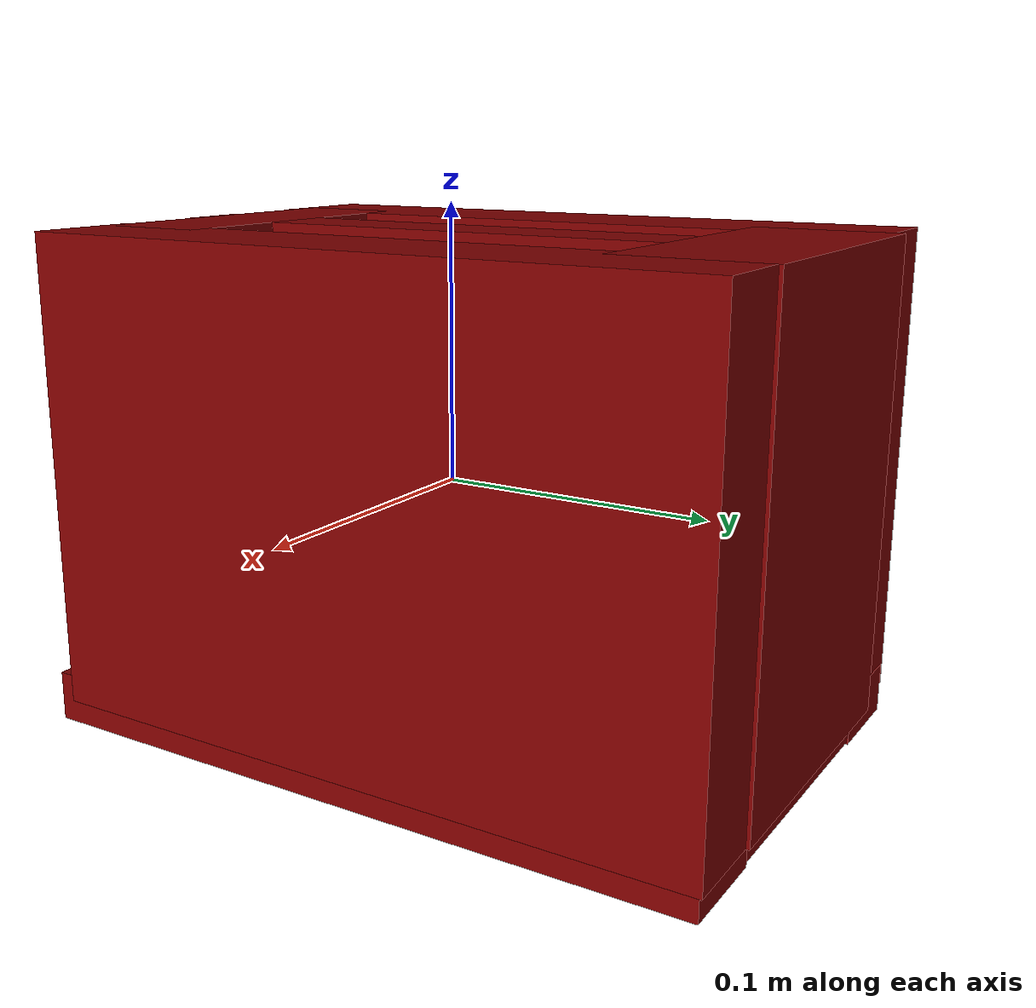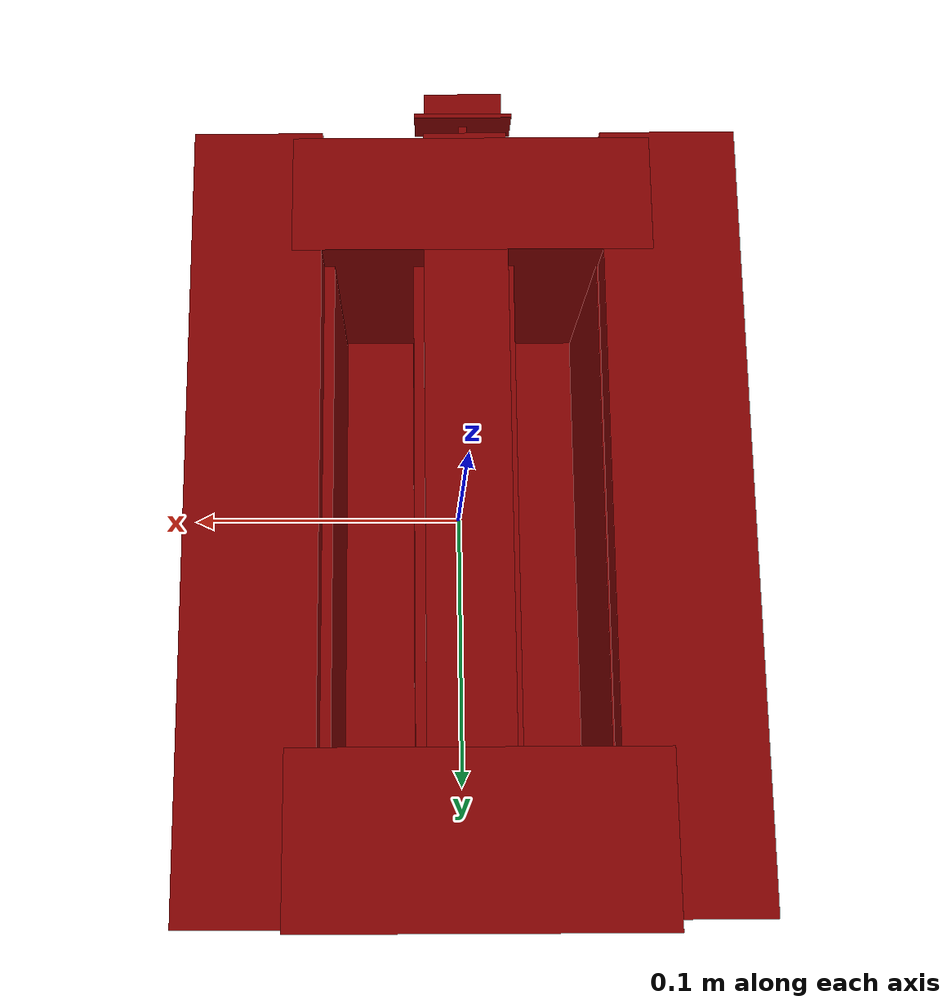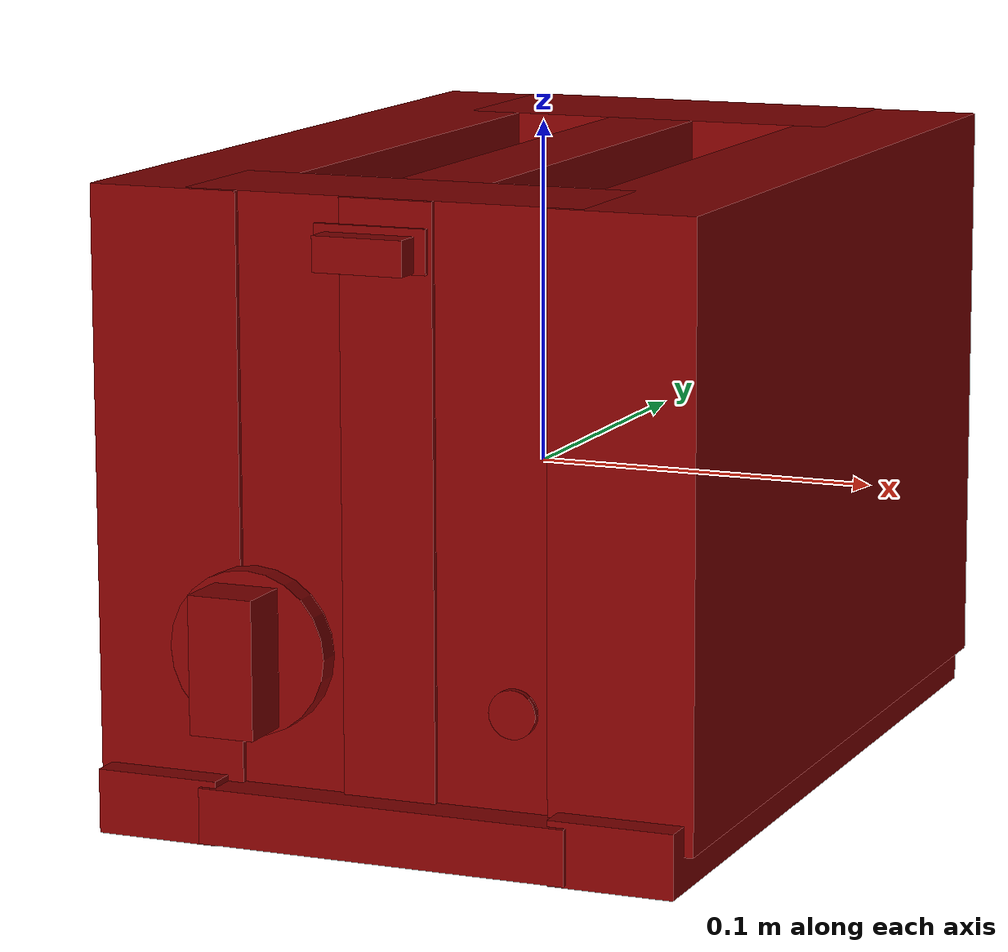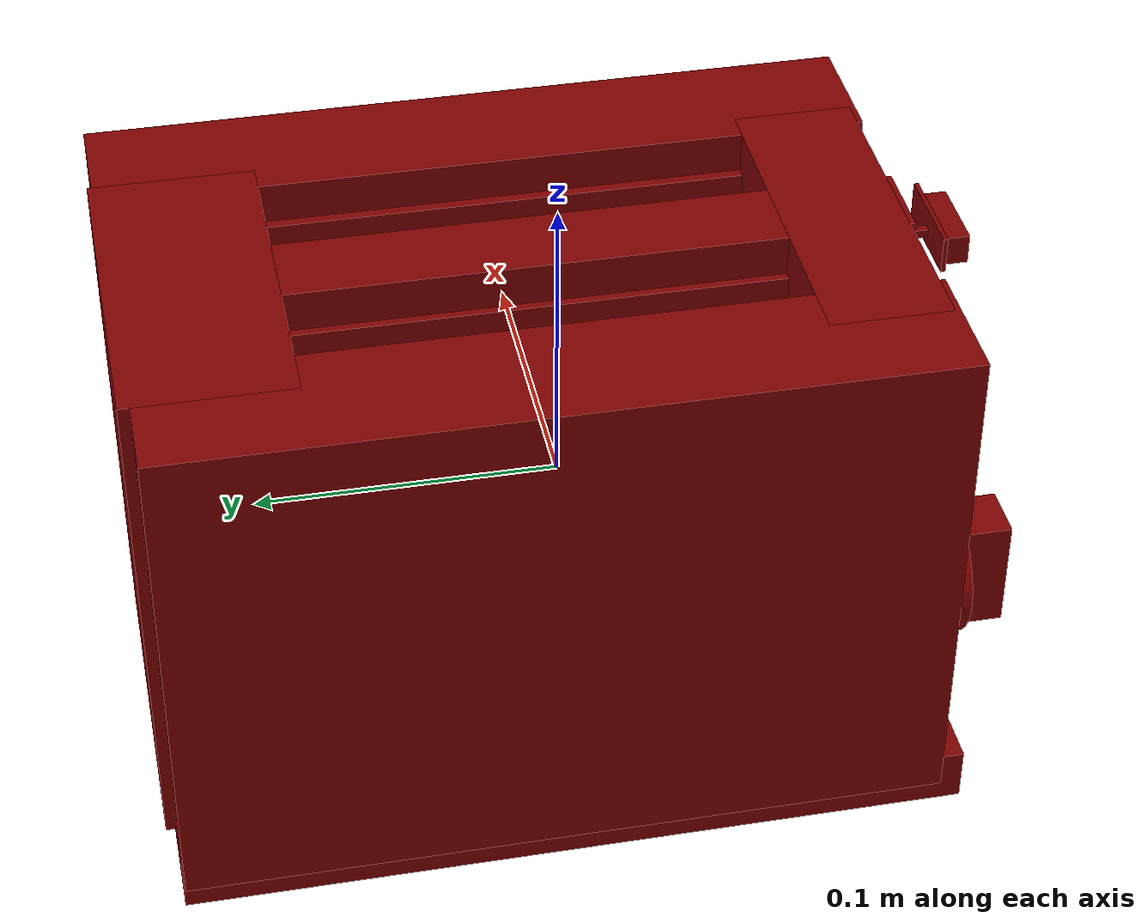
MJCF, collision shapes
<?xml version='1.0' encoding='UTF-8'?>
<mujoco model="model">
  <option timestep="0.002" gravity="0.0 0.0 -9.81"/>
  <compiler angle="radian"/>
  <asset>
    <mesh file="visuals/button_cancel.obj" name="button_cancel_vis"/>
    <mesh file="visuals/knob_doneness.obj" name="knob_doneness_vis"/>
    <mesh file="visuals/lever.obj" name="lever_vis"/>
    <mesh file="visuals/Body001.obj" name="Body001_vis"/>
    <mesh file="visuals/Body002.obj" name="Body002_vis"/>
    <texture file="visuals/T_BC001.png" name="Body001_material" type="2d"/>
    <material name="Body001_material" rgba="1 1 1 1.0" texture="Body001_material" shininess="0.5" specular="0.33333333333333337"/>
    <texture file="visuals/T_BC001.png" name="button_cancel_material" type="2d"/>
    <material name="button_cancel_material" rgba="1 1 1 1.0" texture="button_cancel_material" shininess="0.5" specular="0.33333333333333337"/>
    <texture file="visuals/T_BC001.png" name="knob_doneness_material" type="2d"/>
    <material name="knob_doneness_material" rgba="1 1 1 1.0" texture="knob_doneness_material" shininess="0.5" specular="0.33333333333333337"/>
    <texture file="visuals/T_BC001.png" name="lever_material" type="2d"/>
    <material name="lever_material" rgba="1 1 1 1.0" texture="lever_material" shininess="0.5" specular="0.33333333333333337"/>
    <texture file="visuals/T_BC001.png" name="Body002_material" type="2d"/>
    <material name="Body002_material" rgba="1 1 1 1.0" texture="Body002_material" shininess="0.5" specular="8"/>
  </asset>
  <default>
    <default class="visual">
      <geom conaffinity="0" contype="0" group="1" type="mesh"/>
    </default>
    <default class="collision_1">
      <geom group="0" rgba="0.5 0 0 0.5" solref="0.004 1" solimp="0.998 0.998 0.001"/>
    </default>
    <default class="collision_2">
      <geom group="0" rgba="0.5 0 0 0.5" solref="0.004 1" solimp="0.998 0.998 0.001"/>
    </default>
    <default class="collision_3">
      <geom group="0" rgba="0.5 0 0 0.5" solref="0.004 1" solimp="0.998 0.998 0.001"/>
    </default>
    <default class="collision_4">
      <geom group="0" rgba="0.5 0 0 0.5" solref="0.004 1" solimp="0.998 0.998 0.001"/>
    </default>
    <default class="collision_5">
      <geom group="0" rgba="0.5 0 0 0.5" solref="0.004 1" solimp="0.998 0.998 0.001"/>
    </default>
    <default class="spawn">
      <geom group="0" rgba="1 1 1 0.5" contype="0" conaffinity="0"/>
      <site group="0" rgba="1 1 1 0.5"/>
    </default>
    <default class="region">
      <geom group="1" conaffinity="0" contype="0" rgba="0 1 0 0" mass="0"/>
    </default>
  </default>
  <worldbody>
    <body>
      <body name="object">
        <geom mesh="Body001_vis" type="mesh" solimp="0.998 0.998 0.001" solref="0.001 1" friction="0.95 0.3 0.1" class="visual" material="Body001_material"/>
        <geom type="box" pos="-0.06657945 0.01320358 0.00512394" size="0.022000417113304138 0.12420133501291275 0.0859735980629921" quat="1.0 0.0 0.0 0.0" class="collision_1"/>
        <geom type="box" pos="-0.06728268 0.00935089 -0.08147969" size="0.018060563132166862 0.12854349613189697 0.009187182411551476" quat="1.0 0.0 0.0 0.0" class="collision_1"/>
        <geom type="box" pos="0.06765034 0.00935089 -0.08147969" size="0.018060563132166862 0.12854349613189697 0.009187182411551476" quat="1.0 0.0 0.0 0.0" class="collision_1"/>
        <geom type="box" pos="0.00063173 0.00837137 -0.08201685" size="0.05432597175240517 0.12903183698654175 0.00795928854495287" quat="1.0 0.0 0.0 0.0" class="collision_1"/>
        <geom type="box" pos="0.06731218 0.01438977 0.00512394" size="0.020953932777047157 0.125385582447052 0.08597490936517715" quat="1.0 0.0 0.0 0.0" class="collision_1"/>
        <geom type="box" pos="-0.00019178 0.01320358 0.00512394" size="0.013569749891757965 0.12419915199279785 0.08597507327795029" quat="1.0 0.0 0.0 0.0" class="collision_1"/>
        <geom type="box" pos="-0.00228699 0.11442229 0.00512394" size="0.05831209197640419 0.026644278317689896 0.08597523719072342" quat="1.0 0.0 0.0 0.0" class="collision_1"/>
        <geom type="box" pos="-0.00228699 -0.08969572 0.00512394" size="0.05831200256943703 0.019513634964823723 0.08597540110349655" quat="1.0 0.0 0.0 0.0" class="collision_1"/>
        <body name="button_cancel">
          <joint axis="0.0 1.0 0.0" pos="0.04105289 -0.11512067 -0.04314575" limited="true" name="button_cancel_joint" range="0.0 0.0008" type="slide" damping="1" frictionloss="1" armature=".01" stiffness="4" springref="-1"/>
          <geom mesh="button_cancel_vis" type="mesh" solimp="0.998 0.998 0.001" solref="0.001 1" friction="0.95 0.3 0.1" class="visual" material="button_cancel_material"/>
          <geom class="collision_2" type="cylinder" pos="0.04098363 -0.12162656 -0.04332728" size="0.006765109021216631 0.0010240203700959682" quat="0.7071068286895752 0.7071067690849304 1.5700924318127872e-16 5.9269340452702814e-24" name="button_cancel_main"/>
        </body>
        <body name="knob_doneness">
          <joint axis="0.0 1.0 0.0" pos="-0.03522433 -0.13081814 -0.03241709" limited="true" name="knob_doneness_joint" range="0.0 5.515240436302081" type="hinge" damping="0.05" frictionloss="0.75" armature="1"/>
          <geom mesh="knob_doneness_vis" type="mesh" solimp="0.998 0.998 0.001" solref="0.001 1" friction="0.95 0.3 0.1" class="visual" material="knob_doneness_material"/>
          <geom class="collision_3" type="box" pos="-0.03493238 -0.13481393 -0.03302064" size="0.009380715899169445 0.008410001173615456 0.0193492379039526" quat="1.0 0.0 0.0 0.0" name="knob_doneness_main" friction="100 0.5 0.01"/>
          <geom type="cylinder" pos="-0.03504496 -0.12344153 -0.03260466" size="0.023005133494734764 0.003482238855212927" quat="0.7071068286895752 0.7071067690849304 1.5700924318127872e-16 5.9269340452702814e-24" class="collision_3" friction="100 0.5 0.01"/>
        </body>
        <body name="lever">
          <joint axis="0.0 0.0 -1.0" pos="0.00025630 -0.09825376 0.07808727" limited="true" name="lever_joint" range="0.0 0.05" type="slide" damping="1" frictionloss="1" armature=".01" stiffness="3" springref="-0.5"/>
          <geom class="region" name="reg_slotR" type="box" pos="0.029214375 0.00814641 0.0895955" size="0.016173035000000002 0.06902388000000001 0.07599997"/>
          <geom class="region" name="reg_slotL" type="box" pos="-0.03072546 0.00814641 0.0895955" size="0.01633936 0.06902388000000001 0.07599997"/>
          <geom mesh="lever_vis" type="mesh" solimp="0.998 0.998 0.001" solref="0.001 1" friction="0.95 0.3 0.1" class="visual" material="lever_material"/>
          <geom class="collision_4" type="box" pos="0.00000000 -0.12554036 0.07831090" size="0.012952662073075771 0.004051509778946638 0.004895103629678488" quat="1.0 0.0 0.0 0.0" name="lever_handle"/>
          <geom type="box" pos="-0.00001021 -0.11701449 0.07781616" size="0.0013755338732153177 0.005228403490036726 0.0013985426630824804" quat="1.0 0.0 0.0 0.0" class="collision_4"/>
          <geom class="collision_4" type="box" pos="0.02966993 0.00995968 0.01071531" size="0.01249999925494194 0.07749733328819275 0.0010805822676047683" quat="1.0 0.0 0.0 0.0" name="slotR_floor"/>
          <geom class="collision_4" type="box" pos="-0.03030550 0.01006698 0.01071531" size="0.01249999925494194 0.07739491760730743 0.0010805829660966992" quat="1.0 0.0 0.0 0.0" name="slotL_floor"/>
          <geom type="box" pos="0.00000000 -0.12059911 0.07914336" size="0.016182949766516685 0.0007320920703932643 0.006149654742330313" quat="1.0 0.0 0.0 0.0" class="collision_4"/>
        </body>
        <body name="Body002">
          <geom mesh="Body002_vis" type="mesh" solimp="0.998 0.998 0.001" solref="0.001 1" friction="0.95 0.3 0.1" class="visual" material="Body002_material"/>
          <geom type="box" pos="-0.04724918 0.00861241 0.00775111" size="0.003237122669816017 0.0820746049284935 0.06991545855998993" quat="1.0 0.0 0.0 0.0" class="collision_5"/>
          <geom type="box" pos="-0.01326622 0.00861241 0.00775111" size="0.003237122669816017 0.0820746049284935 0.06991545855998993" quat="1.0 0.0 0.0 0.0" class="collision_5"/>
          <geom type="box" pos="0.01380919 0.00861241 0.00775111" size="0.002961937105283141 0.0820746049284935 0.06991545855998993" quat="1.0 0.0 0.0 0.0" class="collision_5"/>
          <geom type="box" pos="0.04543448 0.00861241 0.00775111" size="0.0025283638387918472 0.0820746049284935 0.06991545855998993" quat="1.0 0.0 0.0 0.0" class="collision_5"/>
          <geom type="box" pos="0.00059256 0.00861241 -0.05692678" size="0.04603833332657814 0.0820746049284935 0.005237564444541931" quat="1.0 0.0 0.0 0.0" class="collision_5"/>
          <geom type="box" pos="0.02778572 0.00861241 -0.05692678" size="0.005674786400049925 0.0820746049284935 0.005237564444541931" quat="1.0 0.0 0.0 0.0" class="collision_5"/>
        </body>
        <geom class="region" name="reg_main" type="box" pos="0.0 0.010105120000000002 2.999499999999794e-05" size="0.0907586 0.13405837 0.091582845"/>
      </body>
    </body>
  </worldbody>
  <actuator>
    <motor name="button_cancel_joint_actuator" joint="button_cancel_joint" gear="0.2"/>
    <motor name="knob_doneness_joint_actuator" joint="knob_doneness_joint" gear="5"/>
    <motor name="lever_joint_actuator" joint="lever_joint" gear="1.5"/>
  </actuator>
</mujoco>
